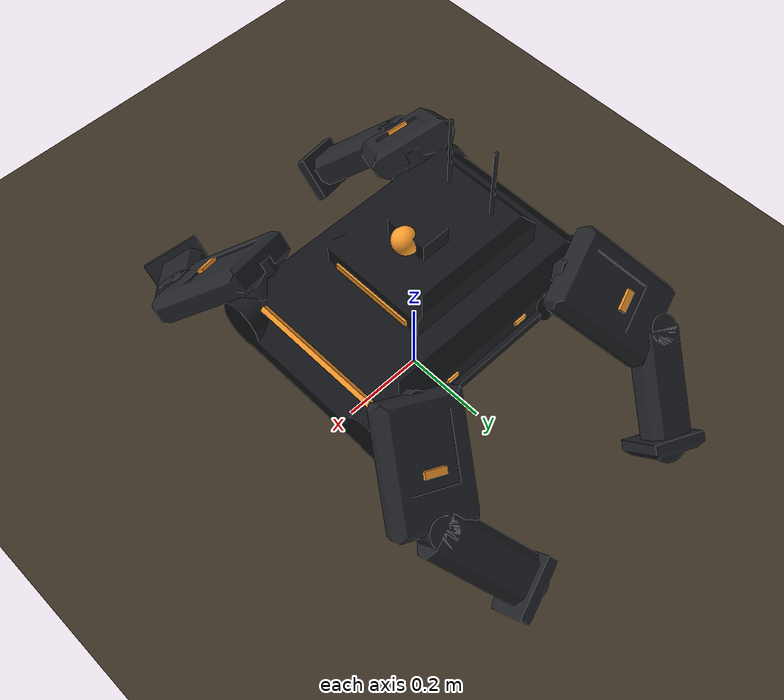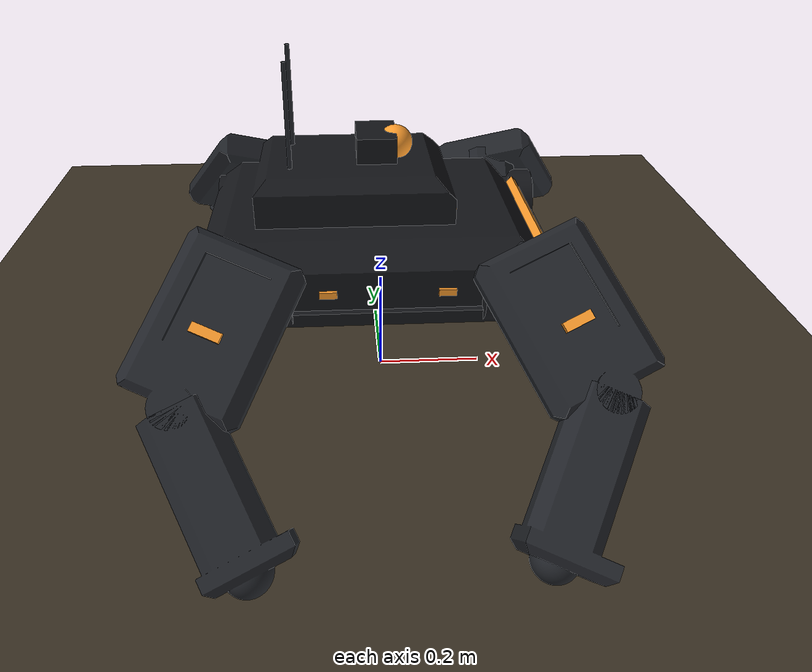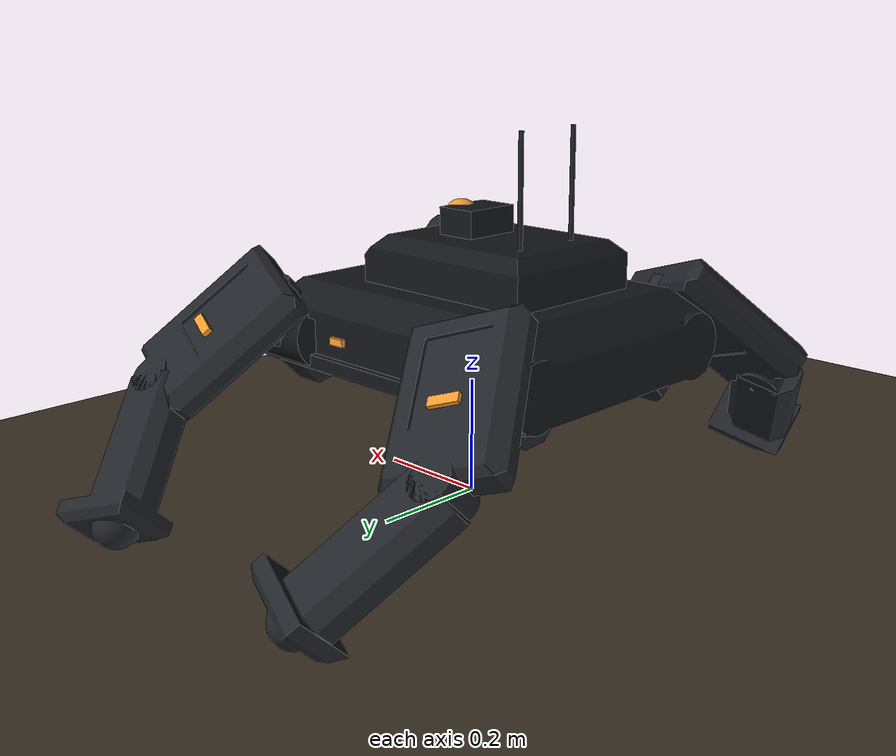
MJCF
<mujoco model="spyder_quad scene">
  <include file="spyder_quad.xml"/>

  <statistic center="0 0 0.3" extent="1.6"/>

  <visual>
    <headlight diffuse="0.18 0.17 0.16" ambient="0.12 0.12 0.14" specular="0.05 0.05 0.05"/>
    <rgba haze="0.06 0.06 0.09 1"/>
    <global azimuth="160" elevation="-12"/>
  </visual>

  <asset>
    <texture name="sky" type="skybox" builtin="gradient" rgb1="0.02 0.02 0.05" rgb2="0.10 0.09 0.13" width="64" height="64"/>
    <texture name="sand" type="2d" builtin="checker" rgb1="0.23 0.19 0.14" rgb2="0.26 0.22 0.16" width="256" height="256"/>
    <material name="sand" texture="sand" texrepeat="20 20" reflectance="0.03"/>
  </asset>

  <worldbody>
    <!-- warm key light raking in low from the front-left, like the reference shot -->
    <light pos="2.5 -1.5 1.2" dir="-0.8 0.5 -0.45" directional="true" diffuse="0.55 0.45 0.33" specular="0.3 0.25 0.18"/>
    <!-- faint cool moonlight fill from above so shadows aren't pure black -->
    <light pos="-1 1 3" dir="0.3 -0.3 -1" directional="true" diffuse="0.10 0.11 0.15"/>
    <geom name="floor" type="plane" size="0 0 0.05" material="sand" condim="3" conaffinity="1" friction="1 0.5 0.5"/>
  </worldbody>
</mujoco>

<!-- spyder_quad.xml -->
<mujoco model="spyder_quad">
  <compiler angle="radian" coordinate="local" meshdir="assets" autolimits="true"/>
  <option integrator="RK4" timestep="0.01"/>

  <default>
    <joint type="hinge" limited="true" damping="3.0" armature="0.1" stiffness="60"/>
    <geom condim="3" friction="1 0.5 0.5"/>
    <default class="visual">
      <geom type="mesh" group="2" contype="0" conaffinity="0" density="0"/>
    </default>
    <default class="collision">
      <geom group="3" contype="1" conaffinity="0" density="97.3"/>
    </default>
    <motor ctrllimited="true"/>
  </default>

  <asset>
    <mesh name="trunk" file="trunk.stl"/>
    <mesh name="hip" file="hip.stl"/>
    <mesh name="thigh" file="thigh.stl"/>
    <mesh name="shank" file="shank.stl"/>
    <mesh name="sensor" file="sensor.stl"/>
    <material name="hull" rgba="0.080000 0.085000 0.100000 1.000000" specular="0.35" shininess="0.4"/>
    <material name="leg" rgba="0.130000 0.140000 0.160000 1.000000" specular="0.3" shininess="0.35"/>
    <material name="amber" rgba="1.000000 0.620000 0.180000 1.000000" emission="1.0"/>
  </asset>

  <worldbody>
    <body name="trunk" pos="0 0 0.3040">
      <freejoint name="root"/>
      <camera name="track" mode="trackcom" pos="0 -2.2 0.8" xyaxes="1 0 0 0 0.5 1"/>
      <geom class="visual" mesh="trunk" material="hull"/>
      <geom class="visual" mesh="sensor" pos="0.0250 0.0000 0.1725" material="amber"/>
      <geom class="visual" type="box" size="0.006 0.16 0.010" pos="0.2740 0 0.024" quat="0.923880 0.000000 0.382683 0.000000" material="amber"/>
      <geom class="visual" type="box" size="0.004 0.10 0.008" pos="0.1210 0 0.0850" material="amber"/>
      <geom class="visual" type="cylinder" size="0.004 0.09" pos="-0.16 0.060 0.24" material="leg"/>
      <geom class="visual" type="cylinder" size="0.004 0.09" pos="-0.16 -0.060 0.24" material="leg"/>
      <geom class="visual" type="box" size="0.015 0.004 0.006" pos="0.100 0.210 -0.015" material="amber"/>
      <geom class="visual" type="box" size="0.015 0.004 0.006" pos="-0.100 0.210 -0.015" material="amber"/>
      <geom class="visual" type="box" size="0.015 0.004 0.006" pos="0.100 -0.210 -0.015" material="amber"/>
      <geom class="visual" type="box" size="0.015 0.004 0.006" pos="-0.100 -0.210 -0.015" material="amber"/>
      <geom class="collision" type="box" size="0.3008 0.2068 0.0700"/>
      <body name="FL_hip" pos="0.2400 0.1900 -0.0200" quat="0.923880 0.382683 0.000000 0.000000">
        <joint name="FL_haa" axis="1 0 0" range="-0.6109 0.6109"/>
        <geom class="visual" mesh="hip" material="leg"/>
        <geom class="collision" type="box" size="0.05 0.09 0.05"/>
        <body name="FL_thigh" pos="0 0.0900 0" quat="0.976296 0.000000 -0.216440 0.000000">
          <joint name="FL_hfe" axis="0 1 0" range="-1.2217 1.2217"/>
          <geom class="visual" mesh="thigh" material="leg"/>
          <geom class="visual" type="box" size="0.025 0.004 0.008" pos="0 0.0355 -0.10" material="amber"/>
          <geom class="collision" type="box" size="0.1000 0.0325 0.1100" pos="0 0 -0.1100"/>
          <body name="FL_shank" pos="0 0 -0.2200" quat="0.906308 0.000000 0.422618 0.000000">
            <joint name="FL_kfe" axis="0 1 0" range="-1.2217 1.2217"/>
            <geom class="visual" mesh="shank" material="leg"/>
            <geom class="collision" type="box" size="0.0525 0.0325 0.1300" pos="0 0 -0.1300"/>
            <geom class="collision" type="sphere" pos="0 0 -0.2600" size="0.04"/>
          </body>
        </body>
      </body>
      <body name="FR_hip" pos="0.2400 -0.1900 -0.0200" quat="0.923880 -0.382683 0.000000 0.000000">
        <joint name="FR_haa" axis="1 0 0" range="-0.6109 0.6109"/>
        <geom class="visual" mesh="hip" material="leg"/>
        <geom class="collision" type="box" size="0.05 0.09 0.05"/>
        <body name="FR_thigh" pos="0 -0.0900 0" quat="0.976296 0.000000 -0.216440 0.000000">
          <joint name="FR_hfe" axis="0 1 0" range="-1.2217 1.2217"/>
          <geom class="visual" mesh="thigh" material="leg"/>
          <geom class="visual" type="box" size="0.025 0.004 0.008" pos="0 -0.0355 -0.10" material="amber"/>
          <geom class="collision" type="box" size="0.1000 0.0325 0.1100" pos="0 0 -0.1100"/>
          <body name="FR_shank" pos="0 0 -0.2200" quat="0.906308 0.000000 0.422618 0.000000">
            <joint name="FR_kfe" axis="0 1 0" range="-1.2217 1.2217"/>
            <geom class="visual" mesh="shank" material="leg"/>
            <geom class="collision" type="box" size="0.0525 0.0325 0.1300" pos="0 0 -0.1300"/>
            <geom class="collision" type="sphere" pos="0 0 -0.2600" size="0.04"/>
          </body>
        </body>
      </body>
      <body name="RL_hip" pos="-0.2400 0.1900 -0.0200" quat="0.923880 0.382683 0.000000 0.000000">
        <joint name="RL_haa" axis="1 0 0" range="-0.6109 0.6109"/>
        <geom class="visual" mesh="hip" material="leg"/>
        <geom class="collision" type="box" size="0.05 0.09 0.05"/>
        <body name="RL_thigh" pos="0 0.0900 0" quat="0.976296 0.000000 0.216440 0.000000">
          <joint name="RL_hfe" axis="0 1 0" range="-1.2217 1.2217"/>
          <geom class="visual" mesh="thigh" material="leg"/>
          <geom class="visual" type="box" size="0.025 0.004 0.008" pos="0 0.0355 -0.10" material="amber"/>
          <geom class="collision" type="box" size="0.1000 0.0325 0.1100" pos="0 0 -0.1100"/>
          <body name="RL_shank" pos="0 0 -0.2200" quat="0.906308 0.000000 -0.422618 0.000000">
            <joint name="RL_kfe" axis="0 1 0" range="-1.2217 1.2217"/>
            <geom class="visual" mesh="shank" material="leg"/>
            <geom class="collision" type="box" size="0.0525 0.0325 0.1300" pos="0 0 -0.1300"/>
            <geom class="collision" type="sphere" pos="0 0 -0.2600" size="0.04"/>
          </body>
        </body>
      </body>
      <body name="RR_hip" pos="-0.2400 -0.1900 -0.0200" quat="0.923880 -0.382683 0.000000 0.000000">
        <joint name="RR_haa" axis="1 0 0" range="-0.6109 0.6109"/>
        <geom class="visual" mesh="hip" material="leg"/>
        <geom class="collision" type="box" size="0.05 0.09 0.05"/>
        <body name="RR_thigh" pos="0 -0.0900 0" quat="0.976296 0.000000 0.216440 0.000000">
          <joint name="RR_hfe" axis="0 1 0" range="-1.2217 1.2217"/>
          <geom class="visual" mesh="thigh" material="leg"/>
          <geom class="visual" type="box" size="0.025 0.004 0.008" pos="0 -0.0355 -0.10" material="amber"/>
          <geom class="collision" type="box" size="0.1000 0.0325 0.1100" pos="0 0 -0.1100"/>
          <body name="RR_shank" pos="0 0 -0.2200" quat="0.906308 0.000000 -0.422618 0.000000">
            <joint name="RR_kfe" axis="0 1 0" range="-1.2217 1.2217"/>
            <geom class="visual" mesh="shank" material="leg"/>
            <geom class="collision" type="box" size="0.0525 0.0325 0.1300" pos="0 0 -0.1300"/>
            <geom class="collision" type="sphere" pos="0 0 -0.2600" size="0.04"/>
          </body>
        </body>
      </body>
    </body>
  </worldbody>

  <actuator>
    <motor name="FL_haa" joint="FL_haa" gear="40" ctrlrange="-1 1"/>
    <motor name="FL_hfe" joint="FL_hfe" gear="40" ctrlrange="-1 1"/>
    <motor name="FL_kfe" joint="FL_kfe" gear="40" ctrlrange="-1 1"/>
    <motor name="FR_haa" joint="FR_haa" gear="40" ctrlrange="-1 1"/>
    <motor name="FR_hfe" joint="FR_hfe" gear="40" ctrlrange="-1 1"/>
    <motor name="FR_kfe" joint="FR_kfe" gear="40" ctrlrange="-1 1"/>
    <motor name="RL_haa" joint="RL_haa" gear="40" ctrlrange="-1 1"/>
    <motor name="RL_hfe" joint="RL_hfe" gear="40" ctrlrange="-1 1"/>
    <motor name="RL_kfe" joint="RL_kfe" gear="40" ctrlrange="-1 1"/>
    <motor name="RR_haa" joint="RR_haa" gear="40" ctrlrange="-1 1"/>
    <motor name="RR_hfe" joint="RR_hfe" gear="40" ctrlrange="-1 1"/>
    <motor name="RR_kfe" joint="RR_kfe" gear="40" ctrlrange="-1 1"/>
  </actuator>
</mujoco>
